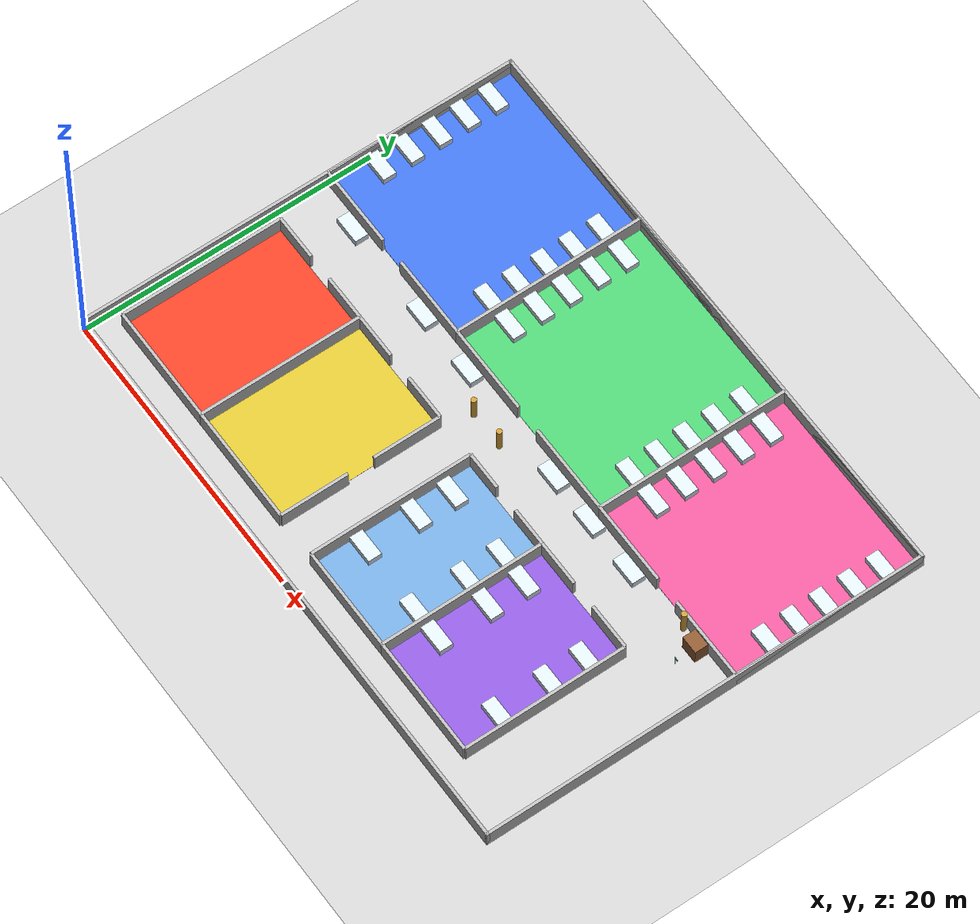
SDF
<?xml version="1.0"?>
<sdf version="1.6">
  <world name="hospital">
    <include><uri>model://ground_plane</uri></include>
    <include><uri>model://sun</uri></include>
    <physics type="ode">
      <max_step_size>0.01</max_step_size>
      <real_time_factor>5</real_time_factor>
      <real_time_update_rate>500</real_time_update_rate>
    </physics>

    <model name="wall_0">
      <static>true</static>
      <pose>20.0 0.0 0.6 0 0 0</pose>
      <link name="link">
        <collision name="c"><geometry><box><size>40.2 0.2 1.2</size></box></geometry></collision>
        <visual name="v"><geometry><box><size>40.2 0.2 1.2</size></box></geometry></visual>
      </link>
    </model>
    <model name="wall_1">
      <static>true</static>
      <pose>20.0 30.0 0.6 0 0 0</pose>
      <link name="link">
        <collision name="c"><geometry><box><size>40.2 0.20000000000000284 1.2</size></box></geometry></collision>
        <visual name="v"><geometry><box><size>40.2 0.20000000000000284 1.2</size></box></geometry></visual>
      </link>
    </model>
    <model name="wall_2">
      <static>true</static>
      <pose>0.0 15.0 0.6 0 0 0</pose>
      <link name="link">
        <collision name="c"><geometry><box><size>0.2 30.200000000000003 1.2</size></box></geometry></collision>
        <visual name="v"><geometry><box><size>0.2 30.200000000000003 1.2</size></box></geometry></visual>
      </link>
    </model>
    <model name="wall_3">
      <static>true</static>
      <pose>40.0 15.0 0.6 0 0 0</pose>
      <link name="link">
        <collision name="c"><geometry><box><size>0.20000000000000284 30.200000000000003 1.2</size></box></geometry></collision>
        <visual name="v"><geometry><box><size>0.20000000000000284 30.200000000000003 1.2</size></box></geometry></visual>
      </link>
    </model>
    <model name="wall_4">
      <static>true</static>
      <pose>2.8 17.0 0.6 0 0 0</pose>
      <link name="link">
        <collision name="c"><geometry><box><size>5.6 0.20000000000000284 1.2</size></box></geometry></collision>
        <visual name="v"><geometry><box><size>5.6 0.20000000000000284 1.2</size></box></geometry></visual>
      </link>
    </model>
    <model name="wall_5">
      <static>true</static>
      <pose>10.2 17.0 0.6 0 0 0</pose>
      <link name="link">
        <collision name="c"><geometry><box><size>5.6 0.20000000000000284 1.2</size></box></geometry></collision>
        <visual name="v"><geometry><box><size>5.6 0.20000000000000284 1.2</size></box></geometry></visual>
      </link>
    </model>
    <model name="wall_6">
      <static>true</static>
      <pose>6.5 30.0 0.6 0 0 0</pose>
      <link name="link">
        <collision name="c"><geometry><box><size>13.0 0.20000000000000284 1.2</size></box></geometry></collision>
        <visual name="v"><geometry><box><size>13.0 0.20000000000000284 1.2</size></box></geometry></visual>
      </link>
    </model>
    <model name="wall_7">
      <static>true</static>
      <pose>0.0 23.5 0.6 0 0 0</pose>
      <link name="link">
        <collision name="c"><geometry><box><size>0.2 13.0 1.2</size></box></geometry></collision>
        <visual name="v"><geometry><box><size>0.2 13.0 1.2</size></box></geometry></visual>
      </link>
    </model>
    <model name="wall_8">
      <static>true</static>
      <pose>13.0 23.5 0.6 0 0 0</pose>
      <link name="link">
        <collision name="c"><geometry><box><size>0.1999999999999993 13.0 1.2</size></box></geometry></collision>
        <visual name="v"><geometry><box><size>0.1999999999999993 13.0 1.2</size></box></geometry></visual>
      </link>
    </model>
    <model name="wall_9">
      <static>true</static>
      <pose>16.05 17.0 0.6 0 0 0</pose>
      <link name="link">
        <collision name="c"><geometry><box><size>6.100000000000001 0.20000000000000284 1.2</size></box></geometry></collision>
        <visual name="v"><geometry><box><size>6.100000000000001 0.20000000000000284 1.2</size></box></geometry></visual>
      </link>
    </model>
    <model name="wall_10">
      <static>true</static>
      <pose>23.95 17.0 0.6 0 0 0</pose>
      <link name="link">
        <collision name="c"><geometry><box><size>6.100000000000001 0.20000000000000284 1.2</size></box></geometry></collision>
        <visual name="v"><geometry><box><size>6.100000000000001 0.20000000000000284 1.2</size></box></geometry></visual>
      </link>
    </model>
    <model name="wall_11">
      <static>true</static>
      <pose>20.0 30.0 0.6 0 0 0</pose>
      <link name="link">
        <collision name="c"><geometry><box><size>14.0 0.20000000000000284 1.2</size></box></geometry></collision>
        <visual name="v"><geometry><box><size>14.0 0.20000000000000284 1.2</size></box></geometry></visual>
      </link>
    </model>
    <model name="wall_12">
      <static>true</static>
      <pose>13.0 23.5 0.6 0 0 0</pose>
      <link name="link">
        <collision name="c"><geometry><box><size>0.1999999999999993 13.0 1.2</size></box></geometry></collision>
        <visual name="v"><geometry><box><size>0.1999999999999993 13.0 1.2</size></box></geometry></visual>
      </link>
    </model>
    <model name="wall_13">
      <static>true</static>
      <pose>27.0 23.5 0.6 0 0 0</pose>
      <link name="link">
        <collision name="c"><geometry><box><size>0.20000000000000284 13.0 1.2</size></box></geometry></collision>
        <visual name="v"><geometry><box><size>0.20000000000000284 13.0 1.2</size></box></geometry></visual>
      </link>
    </model>
    <model name="wall_14">
      <static>true</static>
      <pose>29.8 17.0 0.6 0 0 0</pose>
      <link name="link">
        <collision name="c"><geometry><box><size>5.600000000000001 0.20000000000000284 1.2</size></box></geometry></collision>
        <visual name="v"><geometry><box><size>5.600000000000001 0.20000000000000284 1.2</size></box></geometry></visual>
      </link>
    </model>
    <model name="wall_15">
      <static>true</static>
      <pose>37.2 17.0 0.6 0 0 0</pose>
      <link name="link">
        <collision name="c"><geometry><box><size>5.600000000000001 0.20000000000000284 1.2</size></box></geometry></collision>
        <visual name="v"><geometry><box><size>5.600000000000001 0.20000000000000284 1.2</size></box></geometry></visual>
      </link>
    </model>
    <model name="wall_16">
      <static>true</static>
      <pose>33.5 30.0 0.6 0 0 0</pose>
      <link name="link">
        <collision name="c"><geometry><box><size>13.0 0.20000000000000284 1.2</size></box></geometry></collision>
        <visual name="v"><geometry><box><size>13.0 0.20000000000000284 1.2</size></box></geometry></visual>
      </link>
    </model>
    <model name="wall_17">
      <static>true</static>
      <pose>27.0 23.5 0.6 0 0 0</pose>
      <link name="link">
        <collision name="c"><geometry><box><size>0.20000000000000284 13.0 1.2</size></box></geometry></collision>
        <visual name="v"><geometry><box><size>0.20000000000000284 13.0 1.2</size></box></geometry></visual>
      </link>
    </model>
    <model name="wall_18">
      <static>true</static>
      <pose>40.0 23.5 0.6 0 0 0</pose>
      <link name="link">
        <collision name="c"><geometry><box><size>0.20000000000000284 13.0 1.2</size></box></geometry></collision>
        <visual name="v"><geometry><box><size>0.20000000000000284 13.0 1.2</size></box></geometry></visual>
      </link>
    </model>
    <model name="wall_19">
      <static>true</static>
      <pose>5.0 2.0 0.6 0 0 0</pose>
      <link name="link">
        <collision name="c"><geometry><box><size>8.0 0.20000000000000018 1.2</size></box></geometry></collision>
        <visual name="v"><geometry><box><size>8.0 0.20000000000000018 1.2</size></box></geometry></visual>
      </link>
    </model>
    <model name="wall_20">
      <static>true</static>
      <pose>2.55 13.0 0.6 0 0 0</pose>
      <link name="link">
        <collision name="c"><geometry><box><size>3.0999999999999996 0.1999999999999993 1.2</size></box></geometry></collision>
        <visual name="v"><geometry><box><size>3.0999999999999996 0.1999999999999993 1.2</size></box></geometry></visual>
      </link>
    </model>
    <model name="wall_21">
      <static>true</static>
      <pose>7.45 13.0 0.6 0 0 0</pose>
      <link name="link">
        <collision name="c"><geometry><box><size>3.0999999999999996 0.1999999999999993 1.2</size></box></geometry></collision>
        <visual name="v"><geometry><box><size>3.0999999999999996 0.1999999999999993 1.2</size></box></geometry></visual>
      </link>
    </model>
    <model name="wall_22">
      <static>true</static>
      <pose>1.0 7.5 0.6 0 0 0</pose>
      <link name="link">
        <collision name="c"><geometry><box><size>0.20000000000000007 11.0 1.2</size></box></geometry></collision>
        <visual name="v"><geometry><box><size>0.20000000000000007 11.0 1.2</size></box></geometry></visual>
      </link>
    </model>
    <model name="wall_23">
      <static>true</static>
      <pose>9.0 7.5 0.6 0 0 0</pose>
      <link name="link">
        <collision name="c"><geometry><box><size>0.1999999999999993 11.0 1.2</size></box></geometry></collision>
        <visual name="v"><geometry><box><size>0.1999999999999993 11.0 1.2</size></box></geometry></visual>
      </link>
    </model>
    <model name="wall_24">
      <static>true</static>
      <pose>13.0 2.0 0.6 0 0 0</pose>
      <link name="link">
        <collision name="c"><geometry><box><size>8.0 0.20000000000000018 1.2</size></box></geometry></collision>
        <visual name="v"><geometry><box><size>8.0 0.20000000000000018 1.2</size></box></geometry></visual>
      </link>
    </model>
    <model name="wall_25">
      <static>true</static>
      <pose>10.55 13.0 0.6 0 0 0</pose>
      <link name="link">
        <collision name="c"><geometry><box><size>3.0999999999999996 0.1999999999999993 1.2</size></box></geometry></collision>
        <visual name="v"><geometry><box><size>3.0999999999999996 0.1999999999999993 1.2</size></box></geometry></visual>
      </link>
    </model>
    <model name="wall_26">
      <static>true</static>
      <pose>15.45 13.0 0.6 0 0 0</pose>
      <link name="link">
        <collision name="c"><geometry><box><size>3.0999999999999996 0.1999999999999993 1.2</size></box></geometry></collision>
        <visual name="v"><geometry><box><size>3.0999999999999996 0.1999999999999993 1.2</size></box></geometry></visual>
      </link>
    </model>
    <model name="wall_27">
      <static>true</static>
      <pose>9.0 7.5 0.6 0 0 0</pose>
      <link name="link">
        <collision name="c"><geometry><box><size>0.1999999999999993 11.0 1.2</size></box></geometry></collision>
        <visual name="v"><geometry><box><size>0.1999999999999993 11.0 1.2</size></box></geometry></visual>
      </link>
    </model>
    <model name="wall_28">
      <static>true</static>
      <pose>17.0 4.3 0.6 0 0 0</pose>
      <link name="link">
        <collision name="c"><geometry><box><size>0.20000000000000284 4.6 1.2</size></box></geometry></collision>
        <visual name="v"><geometry><box><size>0.20000000000000284 4.6 1.2</size></box></geometry></visual>
      </link>
    </model>
    <model name="wall_29">
      <static>true</static>
      <pose>17.0 10.7 0.6 0 0 0</pose>
      <link name="link">
        <collision name="c"><geometry><box><size>0.20000000000000284 4.6 1.2</size></box></geometry></collision>
        <visual name="v"><geometry><box><size>0.20000000000000284 4.6 1.2</size></box></geometry></visual>
      </link>
    </model>
    <model name="wall_30">
      <static>true</static>
      <pose>23.5 2.0 0.6 0 0 0</pose>
      <link name="link">
        <collision name="c"><geometry><box><size>7.0 0.20000000000000018 1.2</size></box></geometry></collision>
        <visual name="v"><geometry><box><size>7.0 0.20000000000000018 1.2</size></box></geometry></visual>
      </link>
    </model>
    <model name="wall_31">
      <static>true</static>
      <pose>21.3 13.0 0.6 0 0 0</pose>
      <link name="link">
        <collision name="c"><geometry><box><size>2.6000000000000014 0.1999999999999993 1.2</size></box></geometry></collision>
        <visual name="v"><geometry><box><size>2.6000000000000014 0.1999999999999993 1.2</size></box></geometry></visual>
      </link>
    </model>
    <model name="wall_32">
      <static>true</static>
      <pose>25.7 13.0 0.6 0 0 0</pose>
      <link name="link">
        <collision name="c"><geometry><box><size>2.6000000000000014 0.1999999999999993 1.2</size></box></geometry></collision>
        <visual name="v"><geometry><box><size>2.6000000000000014 0.1999999999999993 1.2</size></box></geometry></visual>
      </link>
    </model>
    <model name="wall_33">
      <static>true</static>
      <pose>20.0 7.5 0.6 0 0 0</pose>
      <link name="link">
        <collision name="c"><geometry><box><size>0.20000000000000284 11.0 1.2</size></box></geometry></collision>
        <visual name="v"><geometry><box><size>0.20000000000000284 11.0 1.2</size></box></geometry></visual>
      </link>
    </model>
    <model name="wall_34">
      <static>true</static>
      <pose>27.0 7.5 0.6 0 0 0</pose>
      <link name="link">
        <collision name="c"><geometry><box><size>0.20000000000000284 11.0 1.2</size></box></geometry></collision>
        <visual name="v"><geometry><box><size>0.20000000000000284 11.0 1.2</size></box></geometry></visual>
      </link>
    </model>
    <model name="wall_35">
      <static>true</static>
      <pose>31.0 2.0 0.6 0 0 0</pose>
      <link name="link">
        <collision name="c"><geometry><box><size>8.0 0.20000000000000018 1.2</size></box></geometry></collision>
        <visual name="v"><geometry><box><size>8.0 0.20000000000000018 1.2</size></box></geometry></visual>
      </link>
    </model>
    <model name="wall_36">
      <static>true</static>
      <pose>28.55 13.0 0.6 0 0 0</pose>
      <link name="link">
        <collision name="c"><geometry><box><size>3.1000000000000014 0.1999999999999993 1.2</size></box></geometry></collision>
        <visual name="v"><geometry><box><size>3.1000000000000014 0.1999999999999993 1.2</size></box></geometry></visual>
      </link>
    </model>
    <model name="wall_37">
      <static>true</static>
      <pose>33.45 13.0 0.6 0 0 0</pose>
      <link name="link">
        <collision name="c"><geometry><box><size>3.1000000000000014 0.1999999999999993 1.2</size></box></geometry></collision>
        <visual name="v"><geometry><box><size>3.1000000000000014 0.1999999999999993 1.2</size></box></geometry></visual>
      </link>
    </model>
    <model name="wall_38">
      <static>true</static>
      <pose>27.0 7.5 0.6 0 0 0</pose>
      <link name="link">
        <collision name="c"><geometry><box><size>0.20000000000000284 11.0 1.2</size></box></geometry></collision>
        <visual name="v"><geometry><box><size>0.20000000000000284 11.0 1.2</size></box></geometry></visual>
      </link>
    </model>
    <model name="wall_39">
      <static>true</static>
      <pose>35.0 7.5 0.6 0 0 0</pose>
      <link name="link">
        <collision name="c"><geometry><box><size>0.20000000000000284 11.0 1.2</size></box></geometry></collision>
        <visual name="v"><geometry><box><size>0.20000000000000284 11.0 1.2</size></box></geometry></visual>
      </link>
    </model>

    <model name="person_0">
      <static>true</static>
      <pose>20.0 15.0 0.9 0 0 0</pose>
      <link name="link">
        <collision name="c"><geometry><cylinder><radius>0.18</radius><length>1.8</length></cylinder></geometry></collision>
        <visual name="v">
          <geometry><cylinder><radius>0.18</radius><length>1.8</length></cylinder></geometry>
          <material><ambient>0.8 0.6 0.2 1</ambient><diffuse>0.8 0.6 0.2 1</diffuse></material>
        </visual>
      </link>
    </model>
    <model name="person_1">
      <static>true</static>
      <pose>35.5 16.7 0.9 0 0 0</pose>
      <link name="link">
        <collision name="c"><geometry><cylinder><radius>0.18</radius><length>1.8</length></cylinder></geometry></collision>
        <visual name="v">
          <geometry><cylinder><radius>0.18</radius><length>1.8</length></cylinder></geometry>
          <material><ambient>0.8 0.6 0.2 1</ambient><diffuse>0.8 0.6 0.2 1</diffuse></material>
        </visual>
      </link>
    </model>
    <model name="person_2">
      <static>true</static>
      <pose>17.5 15.0 0.9 0 0 0</pose>
      <link name="link">
        <collision name="c"><geometry><cylinder><radius>0.18</radius><length>1.8</length></cylinder></geometry></collision>
        <visual name="v">
          <geometry><cylinder><radius>0.18</radius><length>1.8</length></cylinder></geometry>
          <material><ambient>0.8 0.6 0.2 1</ambient><diffuse>0.8 0.6 0.2 1</diffuse></material>
        </visual>
      </link>
    </model>

    <model name="floor_male_ward">
      <static>true</static>
      <pose>6.5 23.5 0.011 0 0 0</pose>
      <link name="link">
        <visual name="v">
          <cast_shadows>false</cast_shadows>
          <geometry><box><size>12.8 12.8 0.02</size></box></geometry>
          <material><ambient>0.25 0.45 0.9 1</ambient><diffuse>0.25 0.45 0.9 1</diffuse></material>
        </visual>
      </link>
    </model>
    <model name="floor_general_ward_1">
      <static>true</static>
      <pose>20.0 23.5 0.011 0 0 0</pose>
      <link name="link">
        <visual name="v">
          <cast_shadows>false</cast_shadows>
          <geometry><box><size>13.8 12.8 0.02</size></box></geometry>
          <material><ambient>0.3 0.8 0.45 1</ambient><diffuse>0.3 0.8 0.45 1</diffuse></material>
        </visual>
      </link>
    </model>
    <model name="floor_female_ward">
      <static>true</static>
      <pose>33.5 23.5 0.011 0 0 0</pose>
      <link name="link">
        <visual name="v">
          <cast_shadows>false</cast_shadows>
          <geometry><box><size>12.8 12.8 0.02</size></box></geometry>
          <material><ambient>0.9 0.35 0.6 1</ambient><diffuse>0.9 0.35 0.6 1</diffuse></material>
        </visual>
      </link>
    </model>
    <model name="floor_ward_icu_emerg">
      <static>true</static>
      <pose>5.0 7.5 0.011 0 0 0</pose>
      <link name="link">
        <visual name="v">
          <cast_shadows>false</cast_shadows>
          <geometry><box><size>7.8 10.8 0.02</size></box></geometry>
          <material><ambient>0.95 0.25 0.15 1</ambient><diffuse>0.95 0.25 0.15 1</diffuse></material>
        </visual>
      </link>
    </model>
    <model name="floor_prayer">
      <static>true</static>
      <pose>13.0 7.5 0.011 0 0 0</pose>
      <link name="link">
        <visual name="v">
          <cast_shadows>false</cast_shadows>
          <geometry><box><size>7.8 10.8 0.02</size></box></geometry>
          <material><ambient>0.85 0.75 0.2 1</ambient><diffuse>0.85 0.75 0.2 1</diffuse></material>
        </visual>
      </link>
    </model>
    <model name="floor_general_ward_3">
      <static>true</static>
      <pose>23.5 7.5 0.011 0 0 0</pose>
      <link name="link">
        <visual name="v">
          <cast_shadows>false</cast_shadows>
          <geometry><box><size>6.8 10.8 0.02</size></box></geometry>
          <material><ambient>0.45 0.65 0.85 1</ambient><diffuse>0.45 0.65 0.85 1</diffuse></material>
        </visual>
      </link>
    </model>
    <model name="floor_general_ward_2">
      <static>true</static>
      <pose>31.0 7.5 0.011 0 0 0</pose>
      <link name="link">
        <visual name="v">
          <cast_shadows>false</cast_shadows>
          <geometry><box><size>7.8 10.8 0.02</size></box></geometry>
          <material><ambient>0.55 0.35 0.85 1</ambient><diffuse>0.55 0.35 0.85 1</diffuse></material>
        </visual>
      </link>
    </model>

    <model name="bed_0">
      <static>true</static>
      <pose>1.05 20.0 0.25 0 0 0</pose>
      <link name="link">
        <collision name="c"><geometry><box><size>1.9 0.8999999999999986 0.5</size></box></geometry></collision>
        <visual name="v">
          <geometry><box><size>1.9 0.8999999999999986 0.5</size></box></geometry>
          <material><ambient>0.85 0.9 0.95 1</ambient><diffuse>0.85 0.9 0.95 1</diffuse></material>
        </visual>
      </link>
    </model>
    <model name="bed_1">
      <static>true</static>
      <pose>11.95 20.0 0.25 0 0 0</pose>
      <link name="link">
        <collision name="c"><geometry><box><size>1.9000000000000004 0.8999999999999986 0.5</size></box></geometry></collision>
        <visual name="v">
          <geometry><box><size>1.9000000000000004 0.8999999999999986 0.5</size></box></geometry>
          <material><ambient>0.85 0.9 0.95 1</ambient><diffuse>0.85 0.9 0.95 1</diffuse></material>
        </visual>
      </link>
    </model>
    <model name="bed_2">
      <static>true</static>
      <pose>1.05 24.0 0.25 0 0 0</pose>
      <link name="link">
        <collision name="c"><geometry><box><size>1.9 0.8999999999999986 0.5</size></box></geometry></collision>
        <visual name="v">
          <geometry><box><size>1.9 0.8999999999999986 0.5</size></box></geometry>
          <material><ambient>0.85 0.9 0.95 1</ambient><diffuse>0.85 0.9 0.95 1</diffuse></material>
        </visual>
      </link>
    </model>
    <model name="bed_3">
      <static>true</static>
      <pose>11.95 24.0 0.25 0 0 0</pose>
      <link name="link">
        <collision name="c"><geometry><box><size>1.9000000000000004 0.8999999999999986 0.5</size></box></geometry></collision>
        <visual name="v">
          <geometry><box><size>1.9000000000000004 0.8999999999999986 0.5</size></box></geometry>
          <material><ambient>0.85 0.9 0.95 1</ambient><diffuse>0.85 0.9 0.95 1</diffuse></material>
        </visual>
      </link>
    </model>
    <model name="bed_4">
      <static>true</static>
      <pose>1.05 28.0 0.25 0 0 0</pose>
      <link name="link">
        <collision name="c"><geometry><box><size>1.9 0.8999999999999986 0.5</size></box></geometry></collision>
        <visual name="v">
          <geometry><box><size>1.9 0.8999999999999986 0.5</size></box></geometry>
          <material><ambient>0.85 0.9 0.95 1</ambient><diffuse>0.85 0.9 0.95 1</diffuse></material>
        </visual>
      </link>
    </model>
    <model name="bed_5">
      <static>true</static>
      <pose>11.95 28.0 0.25 0 0 0</pose>
      <link name="link">
        <collision name="c"><geometry><box><size>1.9000000000000004 0.8999999999999986 0.5</size></box></geometry></collision>
        <visual name="v">
          <geometry><box><size>1.9000000000000004 0.8999999999999986 0.5</size></box></geometry>
          <material><ambient>0.85 0.9 0.95 1</ambient><diffuse>0.85 0.9 0.95 1</diffuse></material>
        </visual>
      </link>
    </model>
    <model name="bed_6">
      <static>true</static>
      <pose>14.05 20.0 0.25 0 0 0</pose>
      <link name="link">
        <collision name="c"><geometry><box><size>1.9000000000000004 0.8999999999999986 0.5</size></box></geometry></collision>
        <visual name="v">
          <geometry><box><size>1.9000000000000004 0.8999999999999986 0.5</size></box></geometry>
          <material><ambient>0.85 0.9 0.95 1</ambient><diffuse>0.85 0.9 0.95 1</diffuse></material>
        </visual>
      </link>
    </model>
    <model name="bed_7">
      <static>true</static>
      <pose>25.95 20.0 0.25 0 0 0</pose>
      <link name="link">
        <collision name="c"><geometry><box><size>1.8999999999999986 0.8999999999999986 0.5</size></box></geometry></collision>
        <visual name="v">
          <geometry><box><size>1.8999999999999986 0.8999999999999986 0.5</size></box></geometry>
          <material><ambient>0.85 0.9 0.95 1</ambient><diffuse>0.85 0.9 0.95 1</diffuse></material>
        </visual>
      </link>
    </model>
    <model name="bed_8">
      <static>true</static>
      <pose>14.05 24.0 0.25 0 0 0</pose>
      <link name="link">
        <collision name="c"><geometry><box><size>1.9000000000000004 0.8999999999999986 0.5</size></box></geometry></collision>
        <visual name="v">
          <geometry><box><size>1.9000000000000004 0.8999999999999986 0.5</size></box></geometry>
          <material><ambient>0.85 0.9 0.95 1</ambient><diffuse>0.85 0.9 0.95 1</diffuse></material>
        </visual>
      </link>
    </model>
    <model name="bed_9">
      <static>true</static>
      <pose>25.95 24.0 0.25 0 0 0</pose>
      <link name="link">
        <collision name="c"><geometry><box><size>1.8999999999999986 0.8999999999999986 0.5</size></box></geometry></collision>
        <visual name="v">
          <geometry><box><size>1.8999999999999986 0.8999999999999986 0.5</size></box></geometry>
          <material><ambient>0.85 0.9 0.95 1</ambient><diffuse>0.85 0.9 0.95 1</diffuse></material>
        </visual>
      </link>
    </model>
    <model name="bed_10">
      <static>true</static>
      <pose>14.05 28.0 0.25 0 0 0</pose>
      <link name="link">
        <collision name="c"><geometry><box><size>1.9000000000000004 0.8999999999999986 0.5</size></box></geometry></collision>
        <visual name="v">
          <geometry><box><size>1.9000000000000004 0.8999999999999986 0.5</size></box></geometry>
          <material><ambient>0.85 0.9 0.95 1</ambient><diffuse>0.85 0.9 0.95 1</diffuse></material>
        </visual>
      </link>
    </model>
    <model name="bed_11">
      <static>true</static>
      <pose>25.95 28.0 0.25 0 0 0</pose>
      <link name="link">
        <collision name="c"><geometry><box><size>1.8999999999999986 0.8999999999999986 0.5</size></box></geometry></collision>
        <visual name="v">
          <geometry><box><size>1.8999999999999986 0.8999999999999986 0.5</size></box></geometry>
          <material><ambient>0.85 0.9 0.95 1</ambient><diffuse>0.85 0.9 0.95 1</diffuse></material>
        </visual>
      </link>
    </model>
    <model name="bed_12">
      <static>true</static>
      <pose>28.05 20.0 0.25 0 0 0</pose>
      <link name="link">
        <collision name="c"><geometry><box><size>1.8999999999999986 0.8999999999999986 0.5</size></box></geometry></collision>
        <visual name="v">
          <geometry><box><size>1.8999999999999986 0.8999999999999986 0.5</size></box></geometry>
          <material><ambient>0.85 0.9 0.95 1</ambient><diffuse>0.85 0.9 0.95 1</diffuse></material>
        </visual>
      </link>
    </model>
    <model name="bed_13">
      <static>true</static>
      <pose>38.95 20.0 0.25 0 0 0</pose>
      <link name="link">
        <collision name="c"><geometry><box><size>1.8999999999999986 0.8999999999999986 0.5</size></box></geometry></collision>
        <visual name="v">
          <geometry><box><size>1.8999999999999986 0.8999999999999986 0.5</size></box></geometry>
          <material><ambient>0.85 0.9 0.95 1</ambient><diffuse>0.85 0.9 0.95 1</diffuse></material>
        </visual>
      </link>
    </model>
    <model name="bed_14">
      <static>true</static>
      <pose>28.05 24.0 0.25 0 0 0</pose>
      <link name="link">
        <collision name="c"><geometry><box><size>1.8999999999999986 0.8999999999999986 0.5</size></box></geometry></collision>
        <visual name="v">
          <geometry><box><size>1.8999999999999986 0.8999999999999986 0.5</size></box></geometry>
          <material><ambient>0.85 0.9 0.95 1</ambient><diffuse>0.85 0.9 0.95 1</diffuse></material>
        </visual>
      </link>
    </model>
    <model name="bed_15">
      <static>true</static>
      <pose>38.95 24.0 0.25 0 0 0</pose>
      <link name="link">
        <collision name="c"><geometry><box><size>1.8999999999999986 0.8999999999999986 0.5</size></box></geometry></collision>
        <visual name="v">
          <geometry><box><size>1.8999999999999986 0.8999999999999986 0.5</size></box></geometry>
          <material><ambient>0.85 0.9 0.95 1</ambient><diffuse>0.85 0.9 0.95 1</diffuse></material>
        </visual>
      </link>
    </model>
    <model name="bed_16">
      <static>true</static>
      <pose>28.05 28.0 0.25 0 0 0</pose>
      <link name="link">
        <collision name="c"><geometry><box><size>1.8999999999999986 0.8999999999999986 0.5</size></box></geometry></collision>
        <visual name="v">
          <geometry><box><size>1.8999999999999986 0.8999999999999986 0.5</size></box></geometry>
          <material><ambient>0.85 0.9 0.95 1</ambient><diffuse>0.85 0.9 0.95 1</diffuse></material>
        </visual>
      </link>
    </model>
    <model name="bed_17">
      <static>true</static>
      <pose>38.95 28.0 0.25 0 0 0</pose>
      <link name="link">
        <collision name="c"><geometry><box><size>1.8999999999999986 0.8999999999999986 0.5</size></box></geometry></collision>
        <visual name="v">
          <geometry><box><size>1.8999999999999986 0.8999999999999986 0.5</size></box></geometry>
          <material><ambient>0.85 0.9 0.95 1</ambient><diffuse>0.85 0.9 0.95 1</diffuse></material>
        </visual>
      </link>
    </model>
    <model name="bed_18">
      <static>true</static>
      <pose>21.05 5.0 0.25 0 0 0</pose>
      <link name="link">
        <collision name="c"><geometry><box><size>1.8999999999999986 0.9000000000000004 0.5</size></box></geometry></collision>
        <visual name="v">
          <geometry><box><size>1.8999999999999986 0.9000000000000004 0.5</size></box></geometry>
          <material><ambient>0.85 0.9 0.95 1</ambient><diffuse>0.85 0.9 0.95 1</diffuse></material>
        </visual>
      </link>
    </model>
    <model name="bed_19">
      <static>true</static>
      <pose>25.95 5.0 0.25 0 0 0</pose>
      <link name="link">
        <collision name="c"><geometry><box><size>1.8999999999999986 0.9000000000000004 0.5</size></box></geometry></collision>
        <visual name="v">
          <geometry><box><size>1.8999999999999986 0.9000000000000004 0.5</size></box></geometry>
          <material><ambient>0.85 0.9 0.95 1</ambient><diffuse>0.85 0.9 0.95 1</diffuse></material>
        </visual>
      </link>
    </model>
    <model name="bed_20">
      <static>true</static>
      <pose>21.05 8.5 0.25 0 0 0</pose>
      <link name="link">
        <collision name="c"><geometry><box><size>1.8999999999999986 0.8999999999999986 0.5</size></box></geometry></collision>
        <visual name="v">
          <geometry><box><size>1.8999999999999986 0.8999999999999986 0.5</size></box></geometry>
          <material><ambient>0.85 0.9 0.95 1</ambient><diffuse>0.85 0.9 0.95 1</diffuse></material>
        </visual>
      </link>
    </model>
    <model name="bed_21">
      <static>true</static>
      <pose>25.95 8.5 0.25 0 0 0</pose>
      <link name="link">
        <collision name="c"><geometry><box><size>1.8999999999999986 0.8999999999999986 0.5</size></box></geometry></collision>
        <visual name="v">
          <geometry><box><size>1.8999999999999986 0.8999999999999986 0.5</size></box></geometry>
          <material><ambient>0.85 0.9 0.95 1</ambient><diffuse>0.85 0.9 0.95 1</diffuse></material>
        </visual>
      </link>
    </model>
    <model name="bed_22">
      <static>true</static>
      <pose>28.05 5.0 0.25 0 0 0</pose>
      <link name="link">
        <collision name="c"><geometry><box><size>1.8999999999999986 0.9000000000000004 0.5</size></box></geometry></collision>
        <visual name="v">
          <geometry><box><size>1.8999999999999986 0.9000000000000004 0.5</size></box></geometry>
          <material><ambient>0.85 0.9 0.95 1</ambient><diffuse>0.85 0.9 0.95 1</diffuse></material>
        </visual>
      </link>
    </model>
    <model name="bed_23">
      <static>true</static>
      <pose>33.95 5.0 0.25 0 0 0</pose>
      <link name="link">
        <collision name="c"><geometry><box><size>1.8999999999999986 0.9000000000000004 0.5</size></box></geometry></collision>
        <visual name="v">
          <geometry><box><size>1.8999999999999986 0.9000000000000004 0.5</size></box></geometry>
          <material><ambient>0.85 0.9 0.95 1</ambient><diffuse>0.85 0.9 0.95 1</diffuse></material>
        </visual>
      </link>
    </model>
    <model name="bed_24">
      <static>true</static>
      <pose>28.05 8.5 0.25 0 0 0</pose>
      <link name="link">
        <collision name="c"><geometry><box><size>1.8999999999999986 0.8999999999999986 0.5</size></box></geometry></collision>
        <visual name="v">
          <geometry><box><size>1.8999999999999986 0.8999999999999986 0.5</size></box></geometry>
          <material><ambient>0.85 0.9 0.95 1</ambient><diffuse>0.85 0.9 0.95 1</diffuse></material>
        </visual>
      </link>
    </model>
    <model name="bed_25">
      <static>true</static>
      <pose>33.95 8.5 0.25 0 0 0</pose>
      <link name="link">
        <collision name="c"><geometry><box><size>1.8999999999999986 0.8999999999999986 0.5</size></box></geometry></collision>
        <visual name="v">
          <geometry><box><size>1.8999999999999986 0.8999999999999986 0.5</size></box></geometry>
          <material><ambient>0.85 0.9 0.95 1</ambient><diffuse>0.85 0.9 0.95 1</diffuse></material>
        </visual>
      </link>
    </model>
    <model name="bed_26">
      <static>true</static>
      <pose>15.0 16.3 0.25 0 0 0</pose>
      <link name="link">
        <collision name="c"><geometry><box><size>1.8999999999999986 0.9000000000000004 0.5</size></box></geometry></collision>
        <visual name="v">
          <geometry><box><size>1.8999999999999986 0.9000000000000004 0.5</size></box></geometry>
          <material><ambient>0.85 0.9 0.95 1</ambient><diffuse>0.85 0.9 0.95 1</diffuse></material>
        </visual>
      </link>
    </model>
    <model name="bed_27">
      <static>true</static>
      <pose>23.5 16.3 0.25 0 0 0</pose>
      <link name="link">
        <collision name="c"><geometry><box><size>1.8999999999999986 0.9000000000000004 0.5</size></box></geometry></collision>
        <visual name="v">
          <geometry><box><size>1.8999999999999986 0.9000000000000004 0.5</size></box></geometry>
          <material><ambient>0.85 0.9 0.95 1</ambient><diffuse>0.85 0.9 0.95 1</diffuse></material>
        </visual>
      </link>
    </model>
    <model name="bed_28">
      <static>true</static>
      <pose>3.5 16.3 0.25 0 0 0</pose>
      <link name="link">
        <collision name="c"><geometry><box><size>1.9000000000000004 0.9000000000000004 0.5</size></box></geometry></collision>
        <visual name="v">
          <geometry><box><size>1.9000000000000004 0.9000000000000004 0.5</size></box></geometry>
          <material><ambient>0.85 0.9 0.95 1</ambient><diffuse>0.85 0.9 0.95 1</diffuse></material>
        </visual>
      </link>
    </model>
    <model name="bed_29">
      <static>true</static>
      <pose>10.5 16.3 0.25 0 0 0</pose>
      <link name="link">
        <collision name="c"><geometry><box><size>1.8999999999999986 0.9000000000000004 0.5</size></box></geometry></collision>
        <visual name="v">
          <geometry><box><size>1.8999999999999986 0.9000000000000004 0.5</size></box></geometry>
          <material><ambient>0.85 0.9 0.95 1</ambient><diffuse>0.85 0.9 0.95 1</diffuse></material>
        </visual>
      </link>
    </model>
    <model name="bed_30">
      <static>true</static>
      <pose>27.0 16.3 0.25 0 0 0</pose>
      <link name="link">
        <collision name="c"><geometry><box><size>1.8999999999999986 0.9000000000000004 0.5</size></box></geometry></collision>
        <visual name="v">
          <geometry><box><size>1.8999999999999986 0.9000000000000004 0.5</size></box></geometry>
          <material><ambient>0.85 0.9 0.95 1</ambient><diffuse>0.85 0.9 0.95 1</diffuse></material>
        </visual>
      </link>
    </model>
    <model name="bed_31">
      <static>true</static>
      <pose>30.8 16.3 0.25 0 0 0</pose>
      <link name="link">
        <collision name="c"><geometry><box><size>1.8999999999999986 0.9000000000000004 0.5</size></box></geometry></collision>
        <visual name="v">
          <geometry><box><size>1.8999999999999986 0.9000000000000004 0.5</size></box></geometry>
          <material><ambient>0.85 0.9 0.95 1</ambient><diffuse>0.85 0.9 0.95 1</diffuse></material>
        </visual>
      </link>
    </model>
    <model name="bed_32">
      <static>true</static>
      <pose>1.05 22.0 0.25 0 0 0</pose>
      <link name="link">
        <collision name="c"><geometry><box><size>1.9 0.8999999999999986 0.5</size></box></geometry></collision>
        <visual name="v">
          <geometry><box><size>1.9 0.8999999999999986 0.5</size></box></geometry>
          <material><ambient>0.85 0.9 0.95 1</ambient><diffuse>0.85 0.9 0.95 1</diffuse></material>
        </visual>
      </link>
    </model>
    <model name="bed_33">
      <static>true</static>
      <pose>11.95 22.0 0.25 0 0 0</pose>
      <link name="link">
        <collision name="c"><geometry><box><size>1.9000000000000004 0.8999999999999986 0.5</size></box></geometry></collision>
        <visual name="v">
          <geometry><box><size>1.9000000000000004 0.8999999999999986 0.5</size></box></geometry>
          <material><ambient>0.85 0.9 0.95 1</ambient><diffuse>0.85 0.9 0.95 1</diffuse></material>
        </visual>
      </link>
    </model>
    <model name="bed_34">
      <static>true</static>
      <pose>1.05 26.0 0.25 0 0 0</pose>
      <link name="link">
        <collision name="c"><geometry><box><size>1.9 0.8999999999999986 0.5</size></box></geometry></collision>
        <visual name="v">
          <geometry><box><size>1.9 0.8999999999999986 0.5</size></box></geometry>
          <material><ambient>0.85 0.9 0.95 1</ambient><diffuse>0.85 0.9 0.95 1</diffuse></material>
        </visual>
      </link>
    </model>
    <model name="bed_35">
      <static>true</static>
      <pose>11.95 26.0 0.25 0 0 0</pose>
      <link name="link">
        <collision name="c"><geometry><box><size>1.9000000000000004 0.8999999999999986 0.5</size></box></geometry></collision>
        <visual name="v">
          <geometry><box><size>1.9000000000000004 0.8999999999999986 0.5</size></box></geometry>
          <material><ambient>0.85 0.9 0.95 1</ambient><diffuse>0.85 0.9 0.95 1</diffuse></material>
        </visual>
      </link>
    </model>
    <model name="bed_36">
      <static>true</static>
      <pose>14.05 22.0 0.25 0 0 0</pose>
      <link name="link">
        <collision name="c"><geometry><box><size>1.9000000000000004 0.8999999999999986 0.5</size></box></geometry></collision>
        <visual name="v">
          <geometry><box><size>1.9000000000000004 0.8999999999999986 0.5</size></box></geometry>
          <material><ambient>0.85 0.9 0.95 1</ambient><diffuse>0.85 0.9 0.95 1</diffuse></material>
        </visual>
      </link>
    </model>
    <model name="bed_37">
      <static>true</static>
      <pose>25.95 22.0 0.25 0 0 0</pose>
      <link name="link">
        <collision name="c"><geometry><box><size>1.8999999999999986 0.8999999999999986 0.5</size></box></geometry></collision>
        <visual name="v">
          <geometry><box><size>1.8999999999999986 0.8999999999999986 0.5</size></box></geometry>
          <material><ambient>0.85 0.9 0.95 1</ambient><diffuse>0.85 0.9 0.95 1</diffuse></material>
        </visual>
      </link>
    </model>
    <model name="bed_38">
      <static>true</static>
      <pose>14.05 26.0 0.25 0 0 0</pose>
      <link name="link">
        <collision name="c"><geometry><box><size>1.9000000000000004 0.8999999999999986 0.5</size></box></geometry></collision>
        <visual name="v">
          <geometry><box><size>1.9000000000000004 0.8999999999999986 0.5</size></box></geometry>
          <material><ambient>0.85 0.9 0.95 1</ambient><diffuse>0.85 0.9 0.95 1</diffuse></material>
        </visual>
      </link>
    </model>
    <model name="bed_39">
      <static>true</static>
      <pose>25.95 26.0 0.25 0 0 0</pose>
      <link name="link">
        <collision name="c"><geometry><box><size>1.8999999999999986 0.8999999999999986 0.5</size></box></geometry></collision>
        <visual name="v">
          <geometry><box><size>1.8999999999999986 0.8999999999999986 0.5</size></box></geometry>
          <material><ambient>0.85 0.9 0.95 1</ambient><diffuse>0.85 0.9 0.95 1</diffuse></material>
        </visual>
      </link>
    </model>
    <model name="bed_40">
      <static>true</static>
      <pose>28.05 22.0 0.25 0 0 0</pose>
      <link name="link">
        <collision name="c"><geometry><box><size>1.8999999999999986 0.8999999999999986 0.5</size></box></geometry></collision>
        <visual name="v">
          <geometry><box><size>1.8999999999999986 0.8999999999999986 0.5</size></box></geometry>
          <material><ambient>0.85 0.9 0.95 1</ambient><diffuse>0.85 0.9 0.95 1</diffuse></material>
        </visual>
      </link>
    </model>
    <model name="bed_41">
      <static>true</static>
      <pose>38.95 22.0 0.25 0 0 0</pose>
      <link name="link">
        <collision name="c"><geometry><box><size>1.8999999999999986 0.8999999999999986 0.5</size></box></geometry></collision>
        <visual name="v">
          <geometry><box><size>1.8999999999999986 0.8999999999999986 0.5</size></box></geometry>
          <material><ambient>0.85 0.9 0.95 1</ambient><diffuse>0.85 0.9 0.95 1</diffuse></material>
        </visual>
      </link>
    </model>
    <model name="bed_42">
      <static>true</static>
      <pose>28.05 26.0 0.25 0 0 0</pose>
      <link name="link">
        <collision name="c"><geometry><box><size>1.8999999999999986 0.8999999999999986 0.5</size></box></geometry></collision>
        <visual name="v">
          <geometry><box><size>1.8999999999999986 0.8999999999999986 0.5</size></box></geometry>
          <material><ambient>0.85 0.9 0.95 1</ambient><diffuse>0.85 0.9 0.95 1</diffuse></material>
        </visual>
      </link>
    </model>
    <model name="bed_43">
      <static>true</static>
      <pose>38.95 26.0 0.25 0 0 0</pose>
      <link name="link">
        <collision name="c"><geometry><box><size>1.8999999999999986 0.8999999999999986 0.5</size></box></geometry></collision>
        <visual name="v">
          <geometry><box><size>1.8999999999999986 0.8999999999999986 0.5</size></box></geometry>
          <material><ambient>0.85 0.9 0.95 1</ambient><diffuse>0.85 0.9 0.95 1</diffuse></material>
        </visual>
      </link>
    </model>
    <model name="bed_44">
      <static>true</static>
      <pose>21.05 11.0 0.25 0 0 0</pose>
      <link name="link">
        <collision name="c"><geometry><box><size>1.8999999999999986 0.8999999999999986 0.5</size></box></geometry></collision>
        <visual name="v">
          <geometry><box><size>1.8999999999999986 0.8999999999999986 0.5</size></box></geometry>
          <material><ambient>0.85 0.9 0.95 1</ambient><diffuse>0.85 0.9 0.95 1</diffuse></material>
        </visual>
      </link>
    </model>
    <model name="bed_45">
      <static>true</static>
      <pose>25.95 11.0 0.25 0 0 0</pose>
      <link name="link">
        <collision name="c"><geometry><box><size>1.8999999999999986 0.8999999999999986 0.5</size></box></geometry></collision>
        <visual name="v">
          <geometry><box><size>1.8999999999999986 0.8999999999999986 0.5</size></box></geometry>
          <material><ambient>0.85 0.9 0.95 1</ambient><diffuse>0.85 0.9 0.95 1</diffuse></material>
        </visual>
      </link>
    </model>
    <model name="bed_46">
      <static>true</static>
      <pose>28.05 11.0 0.25 0 0 0</pose>
      <link name="link">
        <collision name="c"><geometry><box><size>1.8999999999999986 0.8999999999999986 0.5</size></box></geometry></collision>
        <visual name="v">
          <geometry><box><size>1.8999999999999986 0.8999999999999986 0.5</size></box></geometry>
          <material><ambient>0.85 0.9 0.95 1</ambient><diffuse>0.85 0.9 0.95 1</diffuse></material>
        </visual>
      </link>
    </model>
    <model name="bed_47">
      <static>true</static>
      <pose>33.95 11.0 0.25 0 0 0</pose>
      <link name="link">
        <collision name="c"><geometry><box><size>1.8999999999999986 0.8999999999999986 0.5</size></box></geometry></collision>
        <visual name="v">
          <geometry><box><size>1.8999999999999986 0.8999999999999986 0.5</size></box></geometry>
          <material><ambient>0.85 0.9 0.95 1</ambient><diffuse>0.85 0.9 0.95 1</diffuse></material>
        </visual>
      </link>
    </model>

    <model name="nurse_desk">
      <static>true</static>
      <pose>37.0 16.4 0.6 0 0 0</pose>
      <link name="link">
        <collision name="c"><geometry><box><size>1.2000000000000028 0.9000000000000021 1.2</size></box></geometry></collision>
        <visual name="v">
          <geometry><box><size>1.2000000000000028 0.9000000000000021 1.2</size></box></geometry>
          <material><ambient>0.55 0.35 0.2 1</ambient><diffuse>0.55 0.35 0.2 1</diffuse></material>
        </visual>
      </link>
    </model>

    <model name="start_point_marker">
      <static>true</static>
      <pose>37.0 15.0 0 0 0 0</pose>
      <link name="link">
        <visual name="pole">
          <cast_shadows>false</cast_shadows>
          <pose>0 0 0.4 0 0 0</pose>
          <geometry><cylinder><radius>0.02</radius><length>0.8</length></cylinder></geometry>
          <material><ambient>0.15 0.15 0.15 1</ambient><diffuse>0.15 0.15 0.15 1</diffuse></material>
        </visual>
        <visual name="flag">
          <cast_shadows>false</cast_shadows>
          <pose>0.13 0 0.72 0 0 0</pose>
          <geometry><box><size>0.26 0.01 0.16</size></box></geometry>
          <material><ambient>0.1 0.8 0.2 1</ambient><diffuse>0.1 0.8 0.2 1</diffuse></material>
        </visual>
      </link>
    </model>
  </world>
</sdf>
